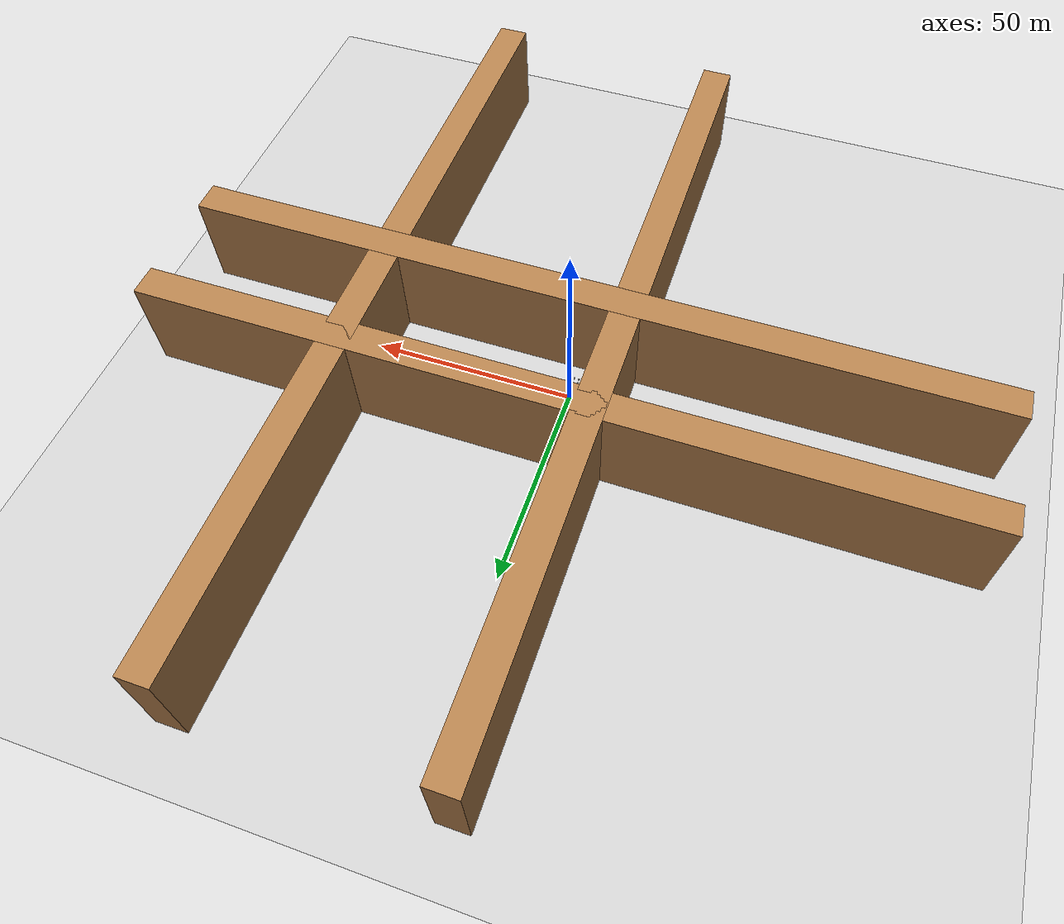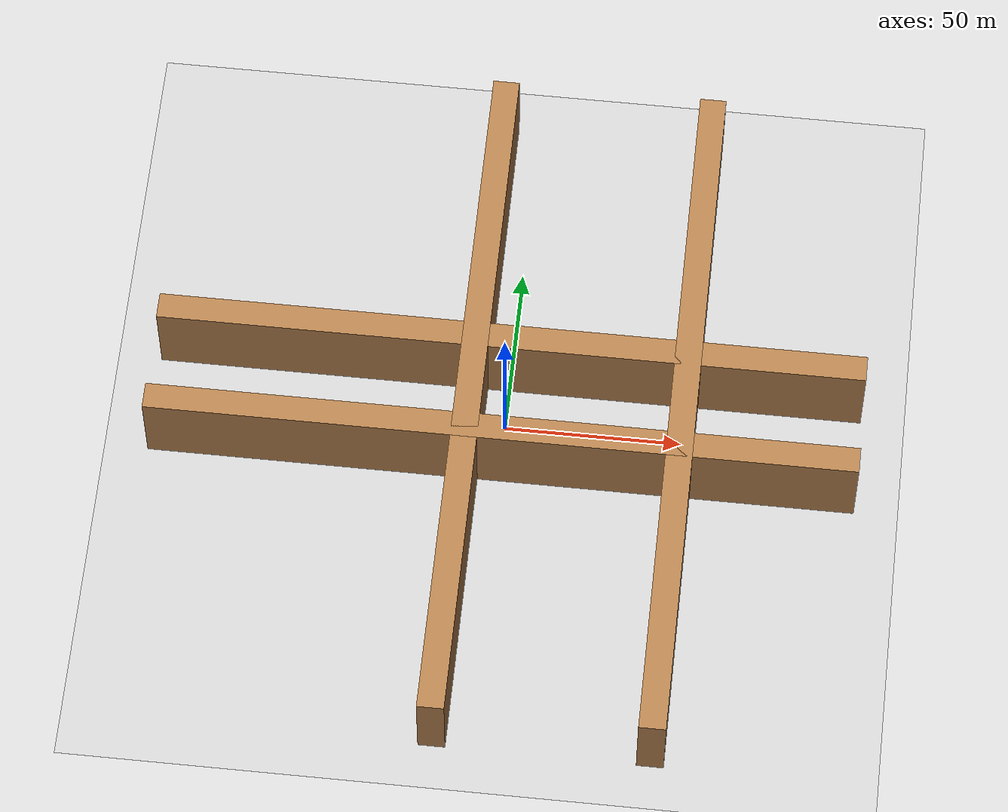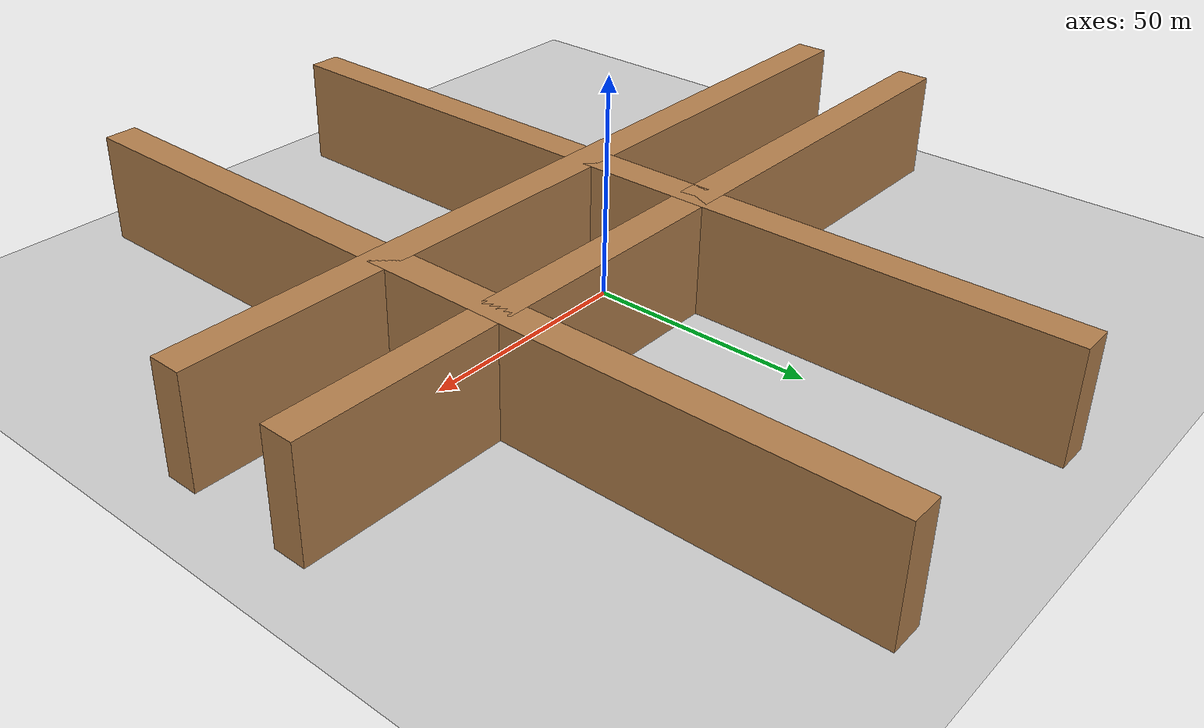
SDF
<sdf version='1.4'>
  <world name='default'>
    <!-- A global light source -->
    <include>
      <uri>model://sun</uri>
    </include>

    <!-- A ground plane -->
    <include>
      <uri>model://ground_plane</uri>
    </include>

    <physics type="ode">
      <real_time_update_rate>1000.0</real_time_update_rate>
      <max_step_size>0.001</max_step_size>
      <real_time_factor>1</real_time_factor>
      <ode>
        <solver>
          <type>quick</type>
          <iters>150</iters>
          <precon_iters>0</precon_iters>
          <sor>1.400000</sor>
          <use_dynamic_moi_rescaling>1</use_dynamic_moi_rescaling>
        </solver>
        <constraints>
          <cfm>0.00001</cfm>
          <erp>0.2</erp>
          <contact_max_correcting_vel>2000.000000</contact_max_correcting_vel>
          <contact_surface_layer>0.01000</contact_surface_layer>
        </constraints>
      </ode>
    </physics>

    <!-- Load model -->
    <include>
      <uri>model://turtlebot3_square_scaled</uri>
    </include>

    <model name='obstacle'>
      <pose frame=''>0 0 0 0 -0 0</pose>
      <link name='obstacle'>
        <collision name='obstacle_1'>
          <pose>-0.6 -0.6 0.25 0 0 0</pose>
          <geometry>
            <cylinder>
              <radius>0.15</radius>
              <length>0.5</length>
            </cylinder>
          </geometry>
          <max_contacts>10</max_contacts>
          <surface>
            <bounce/>
            <friction>
              <ode/>
            </friction>
            <contact>
              <ode/>
            </contact>
          </surface>
        </collision>

        <visual name='obstacle_1'>
          <pose>-0.6 -0.6 0.25 0 0 0</pose>
          <geometry>
            <cylinder>
              <radius>0.15</radius>
              <length>0.5</length>
            </cylinder>
          </geometry>
          <material>
            <script>
              <uri>file://media/materials/scripts/gazebo.material</uri>
              <name>Gazebo/White</name>
            </script>
          </material>
        </visual>

        <collision name='obstacle_2'>
          <pose>-0.6 0.6 0.25 0 0 0</pose>
          <geometry>
            <cylinder>
              <radius>0.15</radius>
              <length>0.5</length>
            </cylinder>
          </geometry>
          <max_contacts>10</max_contacts>
          <surface>
            <bounce/>
            <friction>
              <ode/>
            </friction>
            <contact>
              <ode/>
            </contact>
          </surface>
        </collision>

        <visual name='obstacle_2'>
          <pose>-0.6 0.6 0.25 0 0 0</pose>
          <geometry>
            <cylinder>
              <radius>0.15</radius>
              <length>0.5</length>
            </cylinder>
          </geometry>
          <material>
            <script>
              <uri>file://media/materials/scripts/gazebo.material</uri>
              <name>Gazebo/White</name>
            </script>
          </material>
        </visual>

        <collision name='obstacle_3'>
          <pose>0.6 -0.6 0.25 0 0 0</pose>
          <geometry>
            <cylinder>
              <radius>0.15</radius>
              <length>0.5</length>
            </cylinder>
          </geometry>
          <max_contacts>10</max_contacts>
          <surface>
            <bounce/>
            <friction>
              <ode/>
            </friction>
            <contact>
              <ode/>
            </contact>
          </surface>
        </collision>

        <visual name='obstacle_3'>
          <pose>0.6 -0.6 0.25 0 0 0</pose>
          <geometry>
            <cylinder>
              <radius>0.15</radius>
              <length>0.5</length>
            </cylinder>
          </geometry>
          <material>
            <script>
              <uri>file://media/materials/scripts/gazebo.material</uri>
              <name>Gazebo/White</name>
            </script>
          </material>
        </visual>
      </link>
    </model>

    <model name='obstacle_2'>
      <pose frame=''>5 1 0 0 -0 0</pose>
      <link name='obstacle'>
        <collision name='obstacle_1'>
          <pose>-0.6 -0.6 0.25 0 0 0</pose>
          <geometry>
            <cylinder>
              <radius>0.15</radius>
              <length>0.5</length>
            </cylinder>
          </geometry>
          <max_contacts>10</max_contacts>
          <surface>
            <bounce/>
            <friction>
              <ode/>
            </friction>
            <contact>
              <ode/>
            </contact>
          </surface>
        </collision>

        <visual name='obstacle_1'>
          <pose>-0.6 -0.6 0.25 0 0 0</pose>
          <geometry>
            <cylinder>
              <radius>0.15</radius>
              <length>0.5</length>
            </cylinder>
          </geometry>
          <material>
            <script>
              <uri>file://media/materials/scripts/gazebo.material</uri>
              <name>Gazebo/White</name>
            </script>
          </material>
        </visual>

        <collision name='obstacle_2'>
          <pose>-0.6 0.6 0.25 0 0 0</pose>
          <geometry>
            <cylinder>
              <radius>0.15</radius>
              <length>0.5</length>
            </cylinder>
          </geometry>
          <max_contacts>10</max_contacts>
          <surface>
            <bounce/>
            <friction>
              <ode/>
            </friction>
            <contact>
              <ode/>
            </contact>
          </surface>
        </collision>

        <visual name='obstacle_2'>
          <pose>-0.6 0.6 0.25 0 0 0</pose>
          <geometry>
            <cylinder>
              <radius>0.15</radius>
              <length>0.5</length>
            </cylinder>
          </geometry>
          <material>
            <script>
              <uri>file://media/materials/scripts/gazebo.material</uri>
              <name>Gazebo/White</name>
            </script>
          </material>
        </visual>

        <collision name='obstacle_3'>
          <pose>0.6 -0.6 0.25 0 0 0</pose>
          <geometry>
            <cylinder>
              <radius>0.15</radius>
              <length>0.5</length>
            </cylinder>
          </geometry>
          <max_contacts>10</max_contacts>
          <surface>
            <bounce/>
            <friction>
              <ode/>
            </friction>
            <contact>
              <ode/>
            </contact>
          </surface>
        </collision>

        <visual name='obstacle_3'>
          <pose>0.6 -0.6 0.25 0 0 0</pose>
          <geometry>
            <cylinder>
              <radius>0.15</radius>
              <length>0.5</length>
            </cylinder>
          </geometry>
          <material>
            <script>
              <uri>file://media/materials/scripts/gazebo.material</uri>
              <name>Gazebo/White</name>
            </script>
          </material>
        </visual>
      </link>
    </model>

    <model name='obstacle_3'>
      <pose frame=''>10 2 0 0 -0 0</pose>
      <link name='obstacle'>
        <collision name='obstacle_1'>
          <pose>-0.6 -0.6 0.25 0 0 0</pose>
          <geometry>
            <cylinder>
              <radius>0.15</radius>
              <length>0.5</length>
            </cylinder>
          </geometry>
          <max_contacts>10</max_contacts>
          <surface>
            <bounce/>
            <friction>
              <ode/>
            </friction>
            <contact>
              <ode/>
            </contact>
          </surface>
        </collision>

        <visual name='obstacle_1'>
          <pose>-0.6 -0.6 0.25 0 0 0</pose>
          <geometry>
            <cylinder>
              <radius>0.15</radius>
              <length>0.5</length>
            </cylinder>
          </geometry>
          <material>
            <script>
              <uri>file://media/materials/scripts/gazebo.material</uri>
              <name>Gazebo/White</name>
            </script>
          </material>
        </visual>

        <collision name='obstacle_2'>
          <pose>-0.6 0.6 0.25 0 0 0</pose>
          <geometry>
            <cylinder>
              <radius>0.15</radius>
              <length>0.5</length>
            </cylinder>
          </geometry>
          <max_contacts>10</max_contacts>
          <surface>
            <bounce/>
            <friction>
              <ode/>
            </friction>
            <contact>
              <ode/>
            </contact>
          </surface>
        </collision>

        <visual name='obstacle_2'>
          <pose>-0.6 0.6 0.25 0 0 0</pose>
          <geometry>
            <cylinder>
              <radius>0.15</radius>
              <length>0.5</length>
            </cylinder>
          </geometry>
          <material>
            <script>
              <uri>file://media/materials/scripts/gazebo.material</uri>
              <name>Gazebo/White</name>
            </script>
          </material>
        </visual>

        <collision name='obstacle_3'>
          <pose>0.6 -0.6 0.25 0 0 0</pose>
          <geometry>
            <cylinder>
              <radius>0.15</radius>
              <length>0.5</length>
            </cylinder>
          </geometry>
          <max_contacts>10</max_contacts>
          <surface>
            <bounce/>
            <friction>
              <ode/>
            </friction>
            <contact>
              <ode/>
            </contact>
          </surface>
        </collision>

        <visual name='obstacle_3'>
          <pose>0.6 -0.6 0.25 0 0 0</pose>
          <geometry>
            <cylinder>
              <radius>0.15</radius>
              <length>0.5</length>
            </cylinder>
          </geometry>
          <material>
            <script>
              <uri>file://media/materials/scripts/gazebo.material</uri>
              <name>Gazebo/White</name>
            </script>
          </material>
        </visual>
      </link>
    </model>

    <model name='obstacle_4'>
      <pose frame=''>0 -5 0 0 -0 0</pose>
      <link name='obstacle'>
        <collision name='obstacle_1'>
          <pose>-0.6 -0.6 0.25 0 0 0</pose>
          <geometry>
            <cylinder>
              <radius>0.15</radius>
              <length>0.5</length>
            </cylinder>
          </geometry>
          <max_contacts>10</max_contacts>
          <surface>
            <bounce/>
            <friction>
              <ode/>
            </friction>
            <contact>
              <ode/>
            </contact>
          </surface>
        </collision>

        <visual name='obstacle_1'>
          <pose>-0.6 -0.6 0.25 0 0 0</pose>
          <geometry>
            <cylinder>
              <radius>0.15</radius>
              <length>0.5</length>
            </cylinder>
          </geometry>
          <material>
            <script>
              <uri>file://media/materials/scripts/gazebo.material</uri>
              <name>Gazebo/White</name>
            </script>
          </material>
        </visual>

        <collision name='obstacle_2'>
          <pose>-0.6 0.6 0.25 0 0 0</pose>
          <geometry>
            <cylinder>
              <radius>0.15</radius>
              <length>0.5</length>
            </cylinder>
          </geometry>
          <max_contacts>10</max_contacts>
          <surface>
            <bounce/>
            <friction>
              <ode/>
            </friction>
            <contact>
              <ode/>
            </contact>
          </surface>
        </collision>

        <visual name='obstacle_2'>
          <pose>-0.6 0.6 0.25 0 0 0</pose>
          <geometry>
            <cylinder>
              <radius>0.15</radius>
              <length>0.5</length>
            </cylinder>
          </geometry>
          <material>
            <script>
              <uri>file://media/materials/scripts/gazebo.material</uri>
              <name>Gazebo/White</name>
            </script>
          </material>
        </visual>

        <collision name='obstacle_3'>
          <pose>0.6 -0.6 0.25 0 0 0</pose>
          <geometry>
            <cylinder>
              <radius>0.15</radius>
              <length>0.5</length>
            </cylinder>
          </geometry>
          <max_contacts>10</max_contacts>
          <surface>
            <bounce/>
            <friction>
              <ode/>
            </friction>
            <contact>
              <ode/>
            </contact>
          </surface>
        </collision>

        <visual name='obstacle_3'>
          <pose>0.6 -0.6 0.25 0 0 0</pose>
          <geometry>
            <cylinder>
              <radius>0.15</radius>
              <length>0.5</length>
            </cylinder>
          </geometry>
          <material>
            <script>
              <uri>file://media/materials/scripts/gazebo.material</uri>
              <name>Gazebo/White</name>
            </script>
          </material>
        </visual>
      </link>
    </model>

    <model name='obstacle_5'>
      <pose frame=''>18 2 0 0 -0 0</pose>
      <link name='obstacle'>
        <collision name='obstacle_1'>
          <pose>-0.6 -0.6 0.25 0 0 0</pose>
          <geometry>
            <cylinder>
              <radius>0.15</radius>
              <length>0.5</length>
            </cylinder>
          </geometry>
          <max_contacts>10</max_contacts>
          <surface>
            <bounce/>
            <friction>
              <ode/>
            </friction>
            <contact>
              <ode/>
            </contact>
          </surface>
        </collision>

        <visual name='obstacle_1'>
          <pose>-0.6 -0.6 0.25 0 0 0</pose>
          <geometry>
            <cylinder>
              <radius>0.15</radius>
              <length>0.5</length>
            </cylinder>
          </geometry>
          <material>
            <script>
              <uri>file://media/materials/scripts/gazebo.material</uri>
              <name>Gazebo/White</name>
            </script>
          </material>
        </visual>

        <collision name='obstacle_2'>
          <pose>-0.6 0.6 0.25 0 0 0</pose>
          <geometry>
            <cylinder>
              <radius>0.15</radius>
              <length>0.5</length>
            </cylinder>
          </geometry>
          <max_contacts>10</max_contacts>
          <surface>
            <bounce/>
            <friction>
              <ode/>
            </friction>
            <contact>
              <ode/>
            </contact>
          </surface>
        </collision>

        <visual name='obstacle_2'>
          <pose>-0.6 0.6 0.25 0 0 0</pose>
          <geometry>
            <cylinder>
              <radius>0.15</radius>
              <length>0.5</length>
            </cylinder>
          </geometry>
          <material>
            <script>
              <uri>file://media/materials/scripts/gazebo.material</uri>
              <name>Gazebo/White</name>
            </script>
          </material>
        </visual>

        <collision name='obstacle_3'>
          <pose>0.6 -0.6 0.25 0 0 0</pose>
          <geometry>
            <cylinder>
              <radius>0.15</radius>
              <length>0.5</length>
            </cylinder>
          </geometry>
          <max_contacts>10</max_contacts>
          <surface>
            <bounce/>
            <friction>
              <ode/>
            </friction>
            <contact>
              <ode/>
            </contact>
          </surface>
        </collision>

        <visual name='obstacle_3'>
          <pose>0.6 -0.6 0.25 0 0 0</pose>
          <geometry>
            <cylinder>
              <radius>0.15</radius>
              <length>0.5</length>
            </cylinder>
          </geometry>
          <material>
            <script>
              <uri>file://media/materials/scripts/gazebo.material</uri>
              <name>Gazebo/White</name>
            </script>
          </material>
        </visual>
      </link>
    </model>

    <model name='obstacle_6'>
      <pose frame=''>30 -2 0 0 -0 0</pose>
      <link name='obstacle'>
        <collision name='obstacle_1'>
          <pose>-0.6 -0.6 0.25 0 0 0</pose>
          <geometry>
            <cylinder>
              <radius>0.15</radius>
              <length>0.5</length>
            </cylinder>
          </geometry>
          <max_contacts>10</max_contacts>
          <surface>
            <bounce/>
            <friction>
              <ode/>
            </friction>
            <contact>
              <ode/>
            </contact>
          </surface>
        </collision>

        <visual name='obstacle_1'>
          <pose>-0.6 -0.6 0.25 0 0 0</pose>
          <geometry>
            <cylinder>
              <radius>0.15</radius>
              <length>0.5</length>
            </cylinder>
          </geometry>
          <material>
            <script>
              <uri>file://media/materials/scripts/gazebo.material</uri>
              <name>Gazebo/White</name>
            </script>
          </material>
        </visual>

        <collision name='obstacle_2'>
          <pose>-0.6 0.6 0.25 0 0 0</pose>
          <geometry>
            <cylinder>
              <radius>0.15</radius>
              <length>0.5</length>
            </cylinder>
          </geometry>
          <max_contacts>10</max_contacts>
          <surface>
            <bounce/>
            <friction>
              <ode/>
            </friction>
            <contact>
              <ode/>
            </contact>
          </surface>
        </collision>

        <visual name='obstacle_2'>
          <pose>-0.6 0.6 0.25 0 0 0</pose>
          <geometry>
            <cylinder>
              <radius>0.15</radius>
              <length>0.5</length>
            </cylinder>
          </geometry>
          <material>
            <script>
              <uri>file://media/materials/scripts/gazebo.material</uri>
              <name>Gazebo/White</name>
            </script>
          </material>
        </visual>

        <collision name='obstacle_3'>
          <pose>0.6 -0.6 0.25 0 0 0</pose>
          <geometry>
            <cylinder>
              <radius>0.15</radius>
              <length>0.5</length>
            </cylinder>
          </geometry>
          <max_contacts>10</max_contacts>
          <surface>
            <bounce/>
            <friction>
              <ode/>
            </friction>
            <contact>
              <ode/>
            </contact>
          </surface>
        </collision>

        <visual name='obstacle_3'>
          <pose>0.6 -0.6 0.25 0 0 0</pose>
          <geometry>
            <cylinder>
              <radius>0.15</radius>
              <length>0.5</length>
            </cylinder>
          </geometry>
          <material>
            <script>
              <uri>file://media/materials/scripts/gazebo.material</uri>
              <name>Gazebo/White</name>
            </script>
          </material>
        </visual>
      </link>
    </model>

    <scene>
      <ambient>0.4 0.4 0.4 1</ambient>
      <background>0.7 0.7 0.7 1</background>
      <shadows>true</shadows>
    </scene>

    <gui fullscreen='0'>
      <camera name='user_camera'>
        <pose>0.0 0.0 17.0 0 1.5708 0</pose>
        <view_controller>orbit</view_controller>
      </camera>
    </gui>
  </world>
</sdf>

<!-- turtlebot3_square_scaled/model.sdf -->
<sdf version='1.6'>
  <model name='turtlebot3_square_scaled_5x'>
    <pose frame=''>0 0 0 0 -0 0</pose>

    <link name='Wall_0'>
      <collision name='Wall_0_Collision'>
        <geometry>
          <box>
            <!-- Scaled size: Original size multiplied by 5 -->
            <size>200 7.5 25</size>
          </box>
        </geometry>
        <!-- Scaled pose: Original pose's Z position multiplied by 5 -->
        <pose frame=''>0 0 12.5 0 -0 0</pose>
      </collision>
      <visual name='Wall_0_Visual'>
        <pose frame=''>0 0 12.5 0 -0 0</pose>
        <geometry>
          <box>
            <size>200 7.5 25</size>
          </box>
        </geometry>
        <material>
          <script>
            <uri>file://media/materials/scripts/gazebo.material</uri>
            <name>Gazebo/Wood</name>
          </script>
          <ambient>1 1 1 1</ambient>
        </material>
      </visual>
      <!-- Scaled pose: Original pose's X and Y positions multiplied by 5 -->
      <pose frame=''>0 16 0 0 -0 0</pose>
    </link>

    <link name='Wall_2'>
      <collision name='Wall_2_Collision'>
        <geometry>
          <box>
            <size>200 7.5 25</size>
          </box>
        </geometry>
        <pose frame=''>0 0 12.5 0 -0 0</pose>
      </collision>
      <visual name='Wall_2_Visual'>
        <pose frame=''>0 0 12.5 0 -0 0</pose>
        <geometry>
          <box>
            <size>200 7.5 25</size>
          </box>
        </geometry>
        <material>
          <script>
            <uri>file://media/materials/scripts/gazebo.material</uri>
            <name>Gazebo/Wood</name>
          </script>
          <ambient>1 1 1 1</ambient>
        </material>
      </visual>
      <pose frame=''>-10 0 0 0 0 -1.5708</pose>
    </link>

    <link name='Wall_3'>
      <collision name='Wall_3_Collision'>
        <geometry>
          <box>
            <size>200 7.5 25</size>
          </box>
        </geometry>
        <pose frame=''>0 0 12.5 0 -0 0</pose>
      </collision>
      <visual name='Wall_3_Visual'>
        <pose frame=''>0 0 12.5 0 -0 0</pose>
        <geometry>
          <box>
            <size>200 7.5 25</size>
          </box>
        </geometry>
        <material>
          <script>
            <uri>file://media/materials/scripts/gazebo.material</uri>
            <name>Gazebo/Wood</name>
          </script>
          <ambient>1 1 1 1</ambient>
        </material>
      </visual>
      <pose frame=''>0 -13 0 0 -0 0</pose>
    </link>

    <link name='Wall_4'>
      <collision name='Wall_4_Collision'>
        <geometry>
          <box>
            <size>200 7.5 25</size>
          </box>
        </geometry>
        <pose frame=''>0 0 12.5 0 -0 0</pose>
      </collision>
      <visual name='Wall_4_Visual'>
        <pose frame=''>0 0 12.5 0 -0 0</pose>
        <geometry>
          <box>
            <size>200 7.5 25</size>
          </box>
        </geometry>
        <material>
          <script>
            <uri>file://media/materials/scripts/gazebo.material</uri>
            <name>Gazebo/Wood</name>
          </script>
          <ambient>1 1 1 1</ambient>
        </material>
      </visual>
      <pose frame=''>50 0 0 0 -0 1.5708</pose>
    </link>

    <static>1</static>
  </model>
</sdf>
